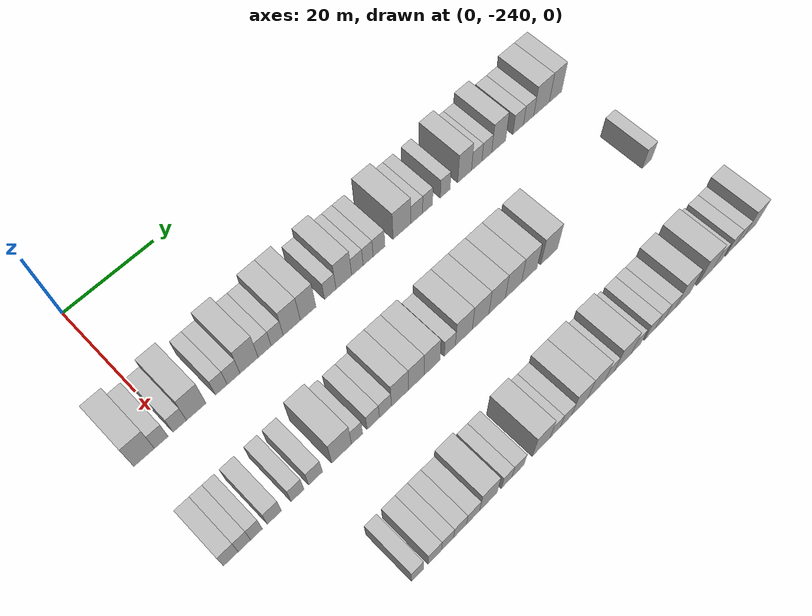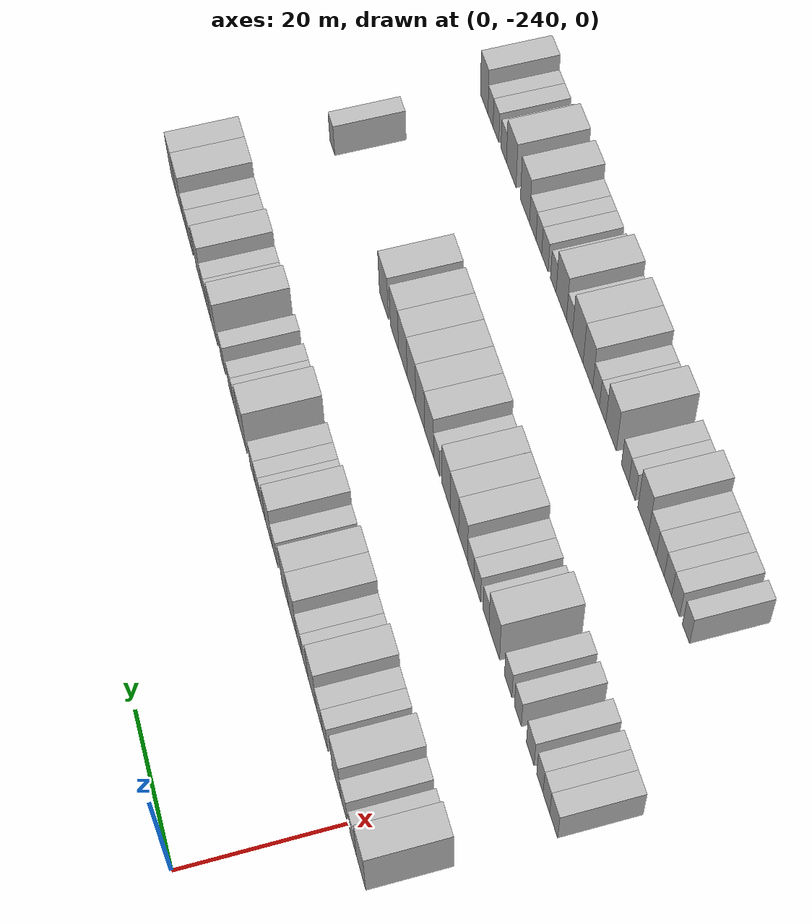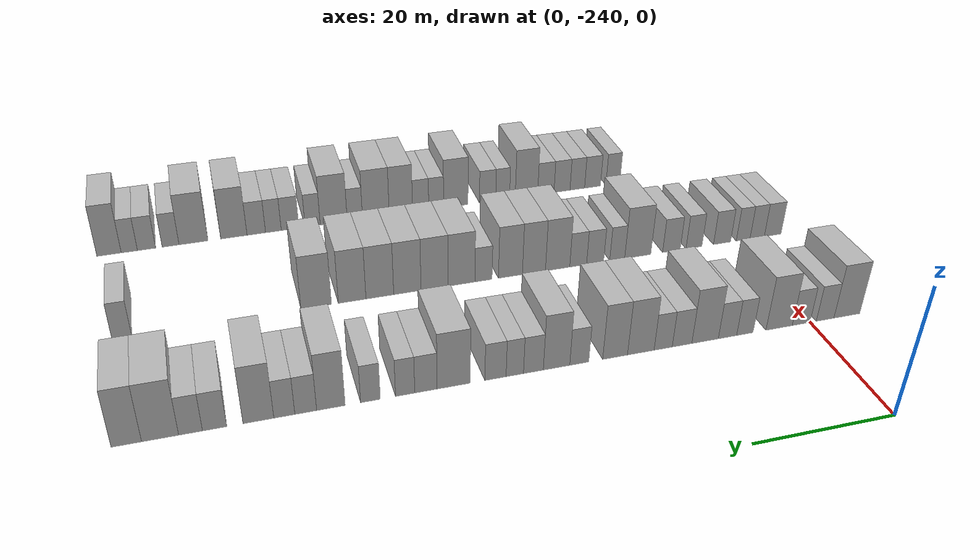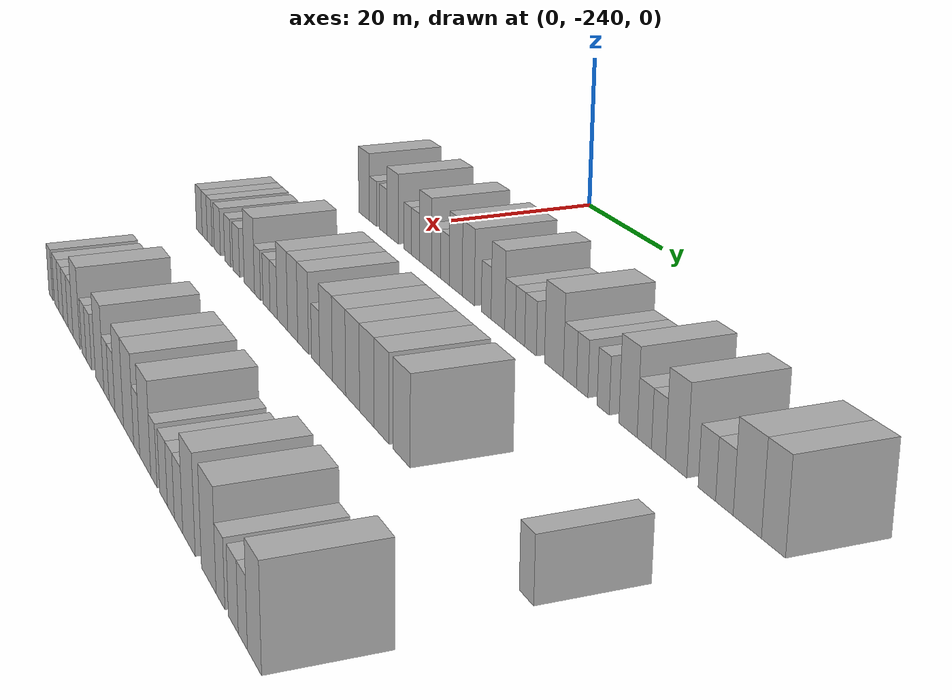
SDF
<sdf version="1.6">
 <world name="default">
  <model name="building_1">
   <static>1</static>
   <pose>25.0000 -245.9098 0 0.000000 0.000000 0.000000</pose>
   <link name="link">
    <pose>0 0 4.50 0 0 0</pose>
    <collision name="collision"><geometry><box><size>10.0000 4.1804 9.0000</size></box></geometry></collision>
    <visual name="visual">
     <cast_shadows>0</cast_shadows>
     <geometry><box><size>10.0000 4.1804 9.0000</size></box></geometry>
     <material>
      <script>
       <uri>model://HANNAS_wall/materials/scripts</uri>
       <uri>model://HANNAS_wall/materials/textures</uri>
       <name>vrc/HANNAS_wall</name>
      </script>
     </material>
    </visual>
   </link>
  </model>
  <model name="building_2">
   <static>1</static>
   <pose>25.0000 -242.4073 0 0.000000 0.000000 0.000000</pose>
   <link name="link">
    <pose>0 0 3.00 0 0 0</pose>
    <collision name="collision"><geometry><box><size>10.0000 2.8245 6.0000</size></box></geometry></collision>
    <visual name="visual">
     <cast_shadows>0</cast_shadows>
     <geometry><box><size>10.0000 2.8245 6.0000</size></box></geometry>
     <material>
      <script>
       <uri>model://HANNAS_wall/materials/scripts</uri>
       <uri>model://HANNAS_wall/materials/textures</uri>
       <name>vrc/HANNAS_wall</name>
      </script>
     </material>
    </visual>
   </link>
  </model>
  <model name="building_3">
   <static>1</static>
   <pose>25.0000 -238.5863 0 0.000000 0.000000 0.000000</pose>
   <link name="link">
    <pose>0 0 3.00 0 0 0</pose>
    <collision name="collision"><geometry><box><size>10.0000 2.8175 6.0000</size></box></geometry></collision>
    <visual name="visual">
     <cast_shadows>0</cast_shadows>
     <geometry><box><size>10.0000 2.8175 6.0000</size></box></geometry>
     <material>
      <script>
       <uri>model://HANNAS_wall/materials/scripts</uri>
       <uri>model://HANNAS_wall/materials/textures</uri>
       <name>vrc/HANNAS_wall</name>
      </script>
     </material>
    </visual>
   </link>
  </model>
  <model name="building_4">
   <static>1</static>
   <pose>25.0000 -235.1116 0 0.000000 0.000000 0.000000</pose>
   <link name="link">
    <pose>0 0 4.50 0 0 0</pose>
    <collision name="collision"><geometry><box><size>10.0000 4.1319 9.0000</size></box></geometry></collision>
    <visual name="visual">
     <cast_shadows>0</cast_shadows>
     <geometry><box><size>10.0000 4.1319 9.0000</size></box></geometry>
     <material>
      <script>
       <uri>model://HANNAS_wall/materials/scripts</uri>
       <uri>model://HANNAS_wall/materials/textures</uri>
       <name>vrc/HANNAS_wall</name>
      </script>
     </material>
    </visual>
   </link>
  </model>
  <model name="building_5">
   <static>1</static>
   <pose>25.0000 -229.7799 0 0.000000 0.000000 0.000000</pose>
   <link name="link">
    <pose>0 0 3.00 0 0 0</pose>
    <collision name="collision"><geometry><box><size>10.0000 2.5315 6.0000</size></box></geometry></collision>
    <visual name="visual">
     <cast_shadows>0</cast_shadows>
     <geometry><box><size>10.0000 2.5315 6.0000</size></box></geometry>
     <material>
      <script>
       <uri>model://HANNAS_wall/materials/scripts</uri>
       <uri>model://HANNAS_wall/materials/textures</uri>
       <name>vrc/HANNAS_wall</name>
      </script>
     </material>
    </visual>
   </link>
  </model>
  <model name="building_6">
   <static>1</static>
   <pose>25.0000 -227.1085 0 0.000000 0.000000 0.000000</pose>
   <link name="link">
    <pose>0 0 3.00 0 0 0</pose>
    <collision name="collision"><geometry><box><size>10.0000 2.8113 6.0000</size></box></geometry></collision>
    <visual name="visual">
     <cast_shadows>0</cast_shadows>
     <geometry><box><size>10.0000 2.8113 6.0000</size></box></geometry>
     <material>
      <script>
       <uri>model://HANNAS_wall/materials/scripts</uri>
       <uri>model://HANNAS_wall/materials/textures</uri>
       <name>vrc/HANNAS_wall</name>
      </script>
     </material>
    </visual>
   </link>
  </model>
  <model name="building_7">
   <static>1</static>
   <pose>25.0000 -223.6957 0 0.000000 0.000000 0.000000</pose>
   <link name="link">
    <pose>0 0 4.50 0 0 0</pose>
    <collision name="collision"><geometry><box><size>10.0000 4.0144 9.0000</size></box></geometry></collision>
    <visual name="visual">
     <cast_shadows>0</cast_shadows>
     <geometry><box><size>10.0000 4.0144 9.0000</size></box></geometry>
     <material>
      <script>
       <uri>model://HANNAS_wall/materials/scripts</uri>
       <uri>model://HANNAS_wall/materials/textures</uri>
       <name>vrc/HANNAS_wall</name>
      </script>
     </material>
    </visual>
   </link>
  </model>
  <model name="building_8">
   <static>1</static>
   <pose>25.0000 -220.2198 0 0.000000 0.000000 0.000000</pose>
   <link name="link">
    <pose>0 0 3.00 0 0 0</pose>
    <collision name="collision"><geometry><box><size>10.0000 2.9374 6.0000</size></box></geometry></collision>
    <visual name="visual">
     <cast_shadows>0</cast_shadows>
     <geometry><box><size>10.0000 2.9374 6.0000</size></box></geometry>
     <material>
      <script>
       <uri>model://HANNAS_wall/materials/scripts</uri>
       <uri>model://HANNAS_wall/materials/textures</uri>
       <name>vrc/HANNAS_wall</name>
      </script>
     </material>
    </visual>
   </link>
  </model>
  <model name="building_9">
   <static>1</static>
   <pose>25.0000 -217.4008 0 0.000000 0.000000 0.000000</pose>
   <link name="link">
    <pose>0 0 3.00 0 0 0</pose>
    <collision name="collision"><geometry><box><size>10.0000 2.7006 6.0000</size></box></geometry></collision>
    <visual name="visual">
     <cast_shadows>0</cast_shadows>
     <geometry><box><size>10.0000 2.7006 6.0000</size></box></geometry>
     <material>
      <script>
       <uri>model://HANNAS_wall/materials/scripts</uri>
       <uri>model://HANNAS_wall/materials/textures</uri>
       <name>vrc/HANNAS_wall</name>
      </script>
     </material>
    </visual>
   </link>
  </model>
  <model name="building_10">
   <static>1</static>
   <pose>25.0000 -214.0906 0 0.000000 0.000000 0.000000</pose>
   <link name="link">
    <pose>0 0 4.50 0 0 0</pose>
    <collision name="collision"><geometry><box><size>10.0000 3.9199 9.0000</size></box></geometry></collision>
    <visual name="visual">
     <cast_shadows>0</cast_shadows>
     <geometry><box><size>10.0000 3.9199 9.0000</size></box></geometry>
     <material>
      <script>
       <uri>model://HANNAS_wall/materials/scripts</uri>
       <uri>model://HANNAS_wall/materials/textures</uri>
       <name>vrc/HANNAS_wall</name>
      </script>
     </material>
    </visual>
   </link>
  </model>
  <model name="building_11">
   <static>1</static>
   <pose>25.0000 -210.3249 0 0.000000 0.000000 0.000000</pose>
   <link name="link">
    <pose>0 0 4.50 0 0 0</pose>
    <collision name="collision"><geometry><box><size>10.0000 3.6115 9.0000</size></box></geometry></collision>
    <visual name="visual">
     <cast_shadows>0</cast_shadows>
     <geometry><box><size>10.0000 3.6115 9.0000</size></box></geometry>
     <material>
      <script>
       <uri>model://HANNAS_wall/materials/scripts</uri>
       <uri>model://HANNAS_wall/materials/textures</uri>
       <name>vrc/HANNAS_wall</name>
      </script>
     </material>
    </visual>
   </link>
  </model>
  <model name="building_12">
   <static>1</static>
   <pose>25.0000 -205.1551 0 0.000000 0.000000 0.000000</pose>
   <link name="link">
    <pose>0 0 3.00 0 0 0</pose>
    <collision name="collision"><geometry><box><size>10.0000 2.7282 6.0000</size></box></geometry></collision>
    <visual name="visual">
     <cast_shadows>0</cast_shadows>
     <geometry><box><size>10.0000 2.7282 6.0000</size></box></geometry>
     <material>
      <script>
       <uri>model://HANNAS_wall/materials/scripts</uri>
       <uri>model://HANNAS_wall/materials/textures</uri>
       <name>vrc/HANNAS_wall</name>
      </script>
     </material>
    </visual>
   </link>
  </model>
  <model name="building_13">
   <static>1</static>
   <pose>25.0000 -201.9180 0 0.000000 0.000000 0.000000</pose>
   <link name="link">
    <pose>0 0 4.50 0 0 0</pose>
    <collision name="collision"><geometry><box><size>10.0000 3.7458 9.0000</size></box></geometry></collision>
    <visual name="visual">
     <cast_shadows>0</cast_shadows>
     <geometry><box><size>10.0000 3.7458 9.0000</size></box></geometry>
     <material>
      <script>
       <uri>model://HANNAS_wall/materials/scripts</uri>
       <uri>model://HANNAS_wall/materials/textures</uri>
       <name>vrc/HANNAS_wall</name>
      </script>
     </material>
    </visual>
   </link>
  </model>
  <model name="building_14">
   <static>1</static>
   <pose>25.0000 -198.6531 0 0.000000 0.000000 0.000000</pose>
   <link name="link">
    <pose>0 0 3.00 0 0 0</pose>
    <collision name="collision"><geometry><box><size>10.0000 2.7839 6.0000</size></box></geometry></collision>
    <visual name="visual">
     <cast_shadows>0</cast_shadows>
     <geometry><box><size>10.0000 2.7839 6.0000</size></box></geometry>
     <material>
      <script>
       <uri>model://HANNAS_wall/materials/scripts</uri>
       <uri>model://HANNAS_wall/materials/textures</uri>
       <name>vrc/HANNAS_wall</name>
      </script>
     </material>
    </visual>
   </link>
  </model>
  <model name="building_15">
   <static>1</static>
   <pose>25.0000 -196.0487 0 0.000000 0.000000 0.000000</pose>
   <link name="link">
    <pose>0 0 3.00 0 0 0</pose>
    <collision name="collision"><geometry><box><size>10.0000 2.4248 6.0000</size></box></geometry></collision>
    <visual name="visual">
     <cast_shadows>0</cast_shadows>
     <geometry><box><size>10.0000 2.4248 6.0000</size></box></geometry>
     <material>
      <script>
       <uri>model://HANNAS_wall/materials/scripts</uri>
       <uri>model://HANNAS_wall/materials/textures</uri>
       <name>vrc/HANNAS_wall</name>
      </script>
     </material>
    </visual>
   </link>
  </model>
  <model name="building_16">
   <static>1</static>
   <pose>25.0000 -193.3712 0 0.000000 0.000000 0.000000</pose>
   <link name="link">
    <pose>0 0 3.00 0 0 0</pose>
    <collision name="collision"><geometry><box><size>10.0000 2.9303 6.0000</size></box></geometry></collision>
    <visual name="visual">
     <cast_shadows>0</cast_shadows>
     <geometry><box><size>10.0000 2.9303 6.0000</size></box></geometry>
     <material>
      <script>
       <uri>model://HANNAS_wall/materials/scripts</uri>
       <uri>model://HANNAS_wall/materials/textures</uri>
       <name>vrc/HANNAS_wall</name>
      </script>
     </material>
    </visual>
   </link>
  </model>
  <model name="building_17">
   <static>1</static>
   <pose>25.0000 -187.6627 0 0.000000 0.000000 0.000000</pose>
   <link name="link">
    <pose>0 0 4.50 0 0 0</pose>
    <collision name="collision"><geometry><box><size>10.0000 4.4866 9.0000</size></box></geometry></collision>
    <visual name="visual">
     <cast_shadows>0</cast_shadows>
     <geometry><box><size>10.0000 4.4866 9.0000</size></box></geometry>
     <material>
      <script>
       <uri>model://HANNAS_wall/materials/scripts</uri>
       <uri>model://HANNAS_wall/materials/textures</uri>
       <name>vrc/HANNAS_wall</name>
      </script>
     </material>
    </visual>
   </link>
  </model>
  <model name="building_18">
   <static>1</static>
   <pose>25.0000 -183.9223 0 0.000000 0.000000 0.000000</pose>
   <link name="link">
    <pose>0 0 3.00 0 0 0</pose>
    <collision name="collision"><geometry><box><size>10.0000 2.9942 6.0000</size></box></geometry></collision>
    <visual name="visual">
     <cast_shadows>0</cast_shadows>
     <geometry><box><size>10.0000 2.9942 6.0000</size></box></geometry>
     <material>
      <script>
       <uri>model://HANNAS_wall/materials/scripts</uri>
       <uri>model://HANNAS_wall/materials/textures</uri>
       <name>vrc/HANNAS_wall</name>
      </script>
     </material>
    </visual>
   </link>
  </model>
  <model name="building_19">
   <static>1</static>
   <pose>25.0000 -181.1492 0 0.000000 0.000000 0.000000</pose>
   <link name="link">
    <pose>0 0 3.00 0 0 0</pose>
    <collision name="collision"><geometry><box><size>10.0000 2.5520 6.0000</size></box></geometry></collision>
    <visual name="visual">
     <cast_shadows>0</cast_shadows>
     <geometry><box><size>10.0000 2.5520 6.0000</size></box></geometry>
     <material>
      <script>
       <uri>model://HANNAS_wall/materials/scripts</uri>
       <uri>model://HANNAS_wall/materials/textures</uri>
       <name>vrc/HANNAS_wall</name>
      </script>
     </material>
    </visual>
   </link>
  </model>
  <model name="building_20">
   <static>1</static>
   <pose>25.0000 -176.5829 0 0.000000 0.000000 0.000000</pose>
   <link name="link">
    <pose>0 0 3.00 0 0 0</pose>
    <collision name="collision"><geometry><box><size>10.0000 2.5806 6.0000</size></box></geometry></collision>
    <visual name="visual">
     <cast_shadows>0</cast_shadows>
     <geometry><box><size>10.0000 2.5806 6.0000</size></box></geometry>
     <material>
      <script>
       <uri>model://HANNAS_wall/materials/scripts</uri>
       <uri>model://HANNAS_wall/materials/textures</uri>
       <name>vrc/HANNAS_wall</name>
      </script>
     </material>
    </visual>
   </link>
  </model>
  <model name="building_21">
   <static>1</static>
   <pose>25.0000 -171.4576 0 0.000000 0.000000 0.000000</pose>
   <link name="link">
    <pose>0 0 4.50 0 0 0</pose>
    <collision name="collision"><geometry><box><size>10.0000 3.6699 9.0000</size></box></geometry></collision>
    <visual name="visual">
     <cast_shadows>0</cast_shadows>
     <geometry><box><size>10.0000 3.6699 9.0000</size></box></geometry>
     <material>
      <script>
       <uri>model://HANNAS_wall/materials/scripts</uri>
       <uri>model://HANNAS_wall/materials/textures</uri>
       <name>vrc/HANNAS_wall</name>
      </script>
     </material>
    </visual>
   </link>
  </model>
  <model name="building_22">
   <static>1</static>
   <pose>25.0000 -168.2360 0 0.000000 0.000000 0.000000</pose>
   <link name="link">
    <pose>0 0 3.00 0 0 0</pose>
    <collision name="collision"><geometry><box><size>10.0000 2.7734 6.0000</size></box></geometry></collision>
    <visual name="visual">
     <cast_shadows>0</cast_shadows>
     <geometry><box><size>10.0000 2.7734 6.0000</size></box></geometry>
     <material>
      <script>
       <uri>model://HANNAS_wall/materials/scripts</uri>
       <uri>model://HANNAS_wall/materials/textures</uri>
       <name>vrc/HANNAS_wall</name>
      </script>
     </material>
    </visual>
   </link>
  </model>
  <model name="building_23">
   <static>1</static>
   <pose>25.0000 -165.5248 0 0.000000 0.000000 0.000000</pose>
   <link name="link">
    <pose>0 0 3.00 0 0 0</pose>
    <collision name="collision"><geometry><box><size>10.0000 2.6490 6.0000</size></box></geometry></collision>
    <visual name="visual">
     <cast_shadows>0</cast_shadows>
     <geometry><box><size>10.0000 2.6490 6.0000</size></box></geometry>
     <material>
      <script>
       <uri>model://HANNAS_wall/materials/scripts</uri>
       <uri>model://HANNAS_wall/materials/textures</uri>
       <name>vrc/HANNAS_wall</name>
      </script>
     </material>
    </visual>
   </link>
  </model>
  <model name="building_24">
   <static>1</static>
   <pose>25.0000 -162.2749 0 0.000000 0.000000 0.000000</pose>
   <link name="link">
    <pose>0 0 4.50 0 0 0</pose>
    <collision name="collision"><geometry><box><size>10.0000 3.8509 9.0000</size></box></geometry></collision>
    <visual name="visual">
     <cast_shadows>0</cast_shadows>
     <geometry><box><size>10.0000 3.8509 9.0000</size></box></geometry>
     <material>
      <script>
       <uri>model://HANNAS_wall/materials/scripts</uri>
       <uri>model://HANNAS_wall/materials/textures</uri>
       <name>vrc/HANNAS_wall</name>
      </script>
     </material>
    </visual>
   </link>
  </model>
  <model name="building_25">
   <static>1</static>
   <pose>25.0000 -156.8620 0 0.000000 0.000000 0.000000</pose>
   <link name="link">
    <pose>0 0 3.00 0 0 0</pose>
    <collision name="collision"><geometry><box><size>10.0000 2.9749 6.0000</size></box></geometry></collision>
    <visual name="visual">
     <cast_shadows>0</cast_shadows>
     <geometry><box><size>10.0000 2.9749 6.0000</size></box></geometry>
     <material>
      <script>
       <uri>model://HANNAS_wall/materials/scripts</uri>
       <uri>model://HANNAS_wall/materials/textures</uri>
       <name>vrc/HANNAS_wall</name>
      </script>
     </material>
    </visual>
   </link>
  </model>
  <model name="building_26">
   <static>1</static>
   <pose>25.0000 -153.9282 0 0.000000 0.000000 0.000000</pose>
   <link name="link">
    <pose>0 0 3.00 0 0 0</pose>
    <collision name="collision"><geometry><box><size>10.0000 2.8927 6.0000</size></box></geometry></collision>
    <visual name="visual">
     <cast_shadows>0</cast_shadows>
     <geometry><box><size>10.0000 2.8927 6.0000</size></box></geometry>
     <material>
      <script>
       <uri>model://HANNAS_wall/materials/scripts</uri>
       <uri>model://HANNAS_wall/materials/textures</uri>
       <name>vrc/HANNAS_wall</name>
      </script>
     </material>
    </visual>
   </link>
  </model>
  <model name="building_27">
   <static>1</static>
   <pose>25.0000 -150.2612 0 0.000000 0.000000 0.000000</pose>
   <link name="link">
    <pose>0 0 4.50 0 0 0</pose>
    <collision name="collision"><geometry><box><size>10.0000 4.4414 9.0000</size></box></geometry></collision>
    <visual name="visual">
     <cast_shadows>0</cast_shadows>
     <geometry><box><size>10.0000 4.4414 9.0000</size></box></geometry>
     <material>
      <script>
       <uri>model://HANNAS_wall/materials/scripts</uri>
       <uri>model://HANNAS_wall/materials/textures</uri>
       <name>vrc/HANNAS_wall</name>
      </script>
     </material>
    </visual>
   </link>
  </model>
  <model name="building_28">
   <static>1</static>
   <pose>25.0000 -146.2379 0 0.000000 0.000000 0.000000</pose>
   <link name="link">
    <pose>0 0 4.50 0 0 0</pose>
    <collision name="collision"><geometry><box><size>10.0000 3.6051 9.0000</size></box></geometry></collision>
    <visual name="visual">
     <cast_shadows>0</cast_shadows>
     <geometry><box><size>10.0000 3.6051 9.0000</size></box></geometry>
     <material>
      <script>
       <uri>model://HANNAS_wall/materials/scripts</uri>
       <uri>model://HANNAS_wall/materials/textures</uri>
       <name>vrc/HANNAS_wall</name>
      </script>
     </material>
    </visual>
   </link>
  </model>
  <model name="building_125">
   <static>1</static>
   <pose>47.0000 -246.5119 0 0.000000 0.000000 0.000000</pose>
   <link name="link">
    <pose>0 0 3.00 0 0 0</pose>
    <collision name="collision"><geometry><box><size>10.0000 2.9762 6.0000</size></box></geometry></collision>
    <visual name="visual">
     <cast_shadows>0</cast_shadows>
     <geometry><box><size>10.0000 2.9762 6.0000</size></box></geometry>
     <material>
      <script>
       <uri>model://HANNAS_wall/materials/scripts</uri>
       <uri>model://HANNAS_wall/materials/textures</uri>
       <name>vrc/HANNAS_wall</name>
      </script>
     </material>
    </visual>
   </link>
  </model>
  <model name="building_126">
   <static>1</static>
   <pose>47.0000 -243.7589 0 0.000000 0.000000 0.000000</pose>
   <link name="link">
    <pose>0 0 3.00 0 0 0</pose>
    <collision name="collision"><geometry><box><size>10.0000 2.5297 6.0000</size></box></geometry></collision>
    <visual name="visual">
     <cast_shadows>0</cast_shadows>
     <geometry><box><size>10.0000 2.5297 6.0000</size></box></geometry>
     <material>
      <script>
       <uri>model://HANNAS_wall/materials/scripts</uri>
       <uri>model://HANNAS_wall/materials/textures</uri>
       <name>vrc/HANNAS_wall</name>
      </script>
     </material>
    </visual>
   </link>
  </model>
  <model name="building_127">
   <static>1</static>
   <pose>47.0000 -241.2882 0 0.000000 0.000000 0.000000</pose>
   <link name="link">
    <pose>0 0 3.00 0 0 0</pose>
    <collision name="collision"><geometry><box><size>10.0000 2.4119 6.0000</size></box></geometry></collision>
    <visual name="visual">
     <cast_shadows>0</cast_shadows>
     <geometry><box><size>10.0000 2.4119 6.0000</size></box></geometry>
     <material>
      <script>
       <uri>model://HANNAS_wall/materials/scripts</uri>
       <uri>model://HANNAS_wall/materials/textures</uri>
       <name>vrc/HANNAS_wall</name>
      </script>
     </material>
    </visual>
   </link>
  </model>
  <model name="building_128">
   <static>1</static>
   <pose>47.0000 -237.5965 0 0.000000 0.000000 0.000000</pose>
   <link name="link">
    <pose>0 0 3.00 0 0 0</pose>
    <collision name="collision"><geometry><box><size>10.0000 2.9713 6.0000</size></box></geometry></collision>
    <visual name="visual">
     <cast_shadows>0</cast_shadows>
     <geometry><box><size>10.0000 2.9713 6.0000</size></box></geometry>
     <material>
      <script>
       <uri>model://HANNAS_wall/materials/scripts</uri>
       <uri>model://HANNAS_wall/materials/textures</uri>
       <name>vrc/HANNAS_wall</name>
      </script>
     </material>
    </visual>
   </link>
  </model>
  <model name="building_129">
   <static>1</static>
   <pose>47.0000 -232.7412 0 0.000000 0.000000 0.000000</pose>
   <link name="link">
    <pose>0 0 3.00 0 0 0</pose>
    <collision name="collision"><geometry><box><size>10.0000 2.7392 6.0000</size></box></geometry></collision>
    <visual name="visual">
     <cast_shadows>0</cast_shadows>
     <geometry><box><size>10.0000 2.7392 6.0000</size></box></geometry>
     <material>
      <script>
       <uri>model://HANNAS_wall/materials/scripts</uri>
       <uri>model://HANNAS_wall/materials/textures</uri>
       <name>vrc/HANNAS_wall</name>
      </script>
     </material>
    </visual>
   </link>
  </model>
  <model name="building_130">
   <static>1</static>
   <pose>47.0000 -228.8809 0 0.000000 0.000000 0.000000</pose>
   <link name="link">
    <pose>0 0 3.00 0 0 0</pose>
    <collision name="collision"><geometry><box><size>10.0000 2.9815 6.0000</size></box></geometry></collision>
    <visual name="visual">
     <cast_shadows>0</cast_shadows>
     <geometry><box><size>10.0000 2.9815 6.0000</size></box></geometry>
     <material>
      <script>
       <uri>model://HANNAS_wall/materials/scripts</uri>
       <uri>model://HANNAS_wall/materials/textures</uri>
       <name>vrc/HANNAS_wall</name>
      </script>
     </material>
    </visual>
   </link>
  </model>
  <model name="building_131">
   <static>1</static>
   <pose>47.0000 -223.2064 0 0.000000 0.000000 0.000000</pose>
   <link name="link">
    <pose>0 0 4.50 0 0 0</pose>
    <collision name="collision"><geometry><box><size>10.0000 4.3675 9.0000</size></box></geometry></collision>
    <visual name="visual">
     <cast_shadows>0</cast_shadows>
     <geometry><box><size>10.0000 4.3675 9.0000</size></box></geometry>
     <material>
      <script>
       <uri>model://HANNAS_wall/materials/scripts</uri>
       <uri>model://HANNAS_wall/materials/textures</uri>
       <name>vrc/HANNAS_wall</name>
      </script>
     </material>
    </visual>
   </link>
  </model>
  <model name="building_132">
   <static>1</static>
   <pose>47.0000 -219.7772 0 0.000000 0.000000 0.000000</pose>
   <link name="link">
    <pose>0 0 3.00 0 0 0</pose>
    <collision name="collision"><geometry><box><size>10.0000 2.4910 6.0000</size></box></geometry></collision>
    <visual name="visual">
     <cast_shadows>0</cast_shadows>
     <geometry><box><size>10.0000 2.4910 6.0000</size></box></geometry>
     <material>
      <script>
       <uri>model://HANNAS_wall/materials/scripts</uri>
       <uri>model://HANNAS_wall/materials/textures</uri>
       <name>vrc/HANNAS_wall</name>
      </script>
     </material>
    </visual>
   </link>
  </model>
  <model name="building_133">
   <static>1</static>
   <pose>47.0000 -216.1342 0 0.000000 0.000000 0.000000</pose>
   <link name="link">
    <pose>0 0 3.00 0 0 0</pose>
    <collision name="collision"><geometry><box><size>10.0000 2.7949 6.0000</size></box></geometry></collision>
    <visual name="visual">
     <cast_shadows>0</cast_shadows>
     <geometry><box><size>10.0000 2.7949 6.0000</size></box></geometry>
     <material>
      <script>
       <uri>model://HANNAS_wall/materials/scripts</uri>
       <uri>model://HANNAS_wall/materials/textures</uri>
       <name>vrc/HANNAS_wall</name>
      </script>
     </material>
    </visual>
   </link>
  </model>
  <model name="building_134">
   <static>1</static>
   <pose>47.0000 -213.3626 0 0.000000 0.000000 0.000000</pose>
   <link name="link">
    <pose>0 0 3.00 0 0 0</pose>
    <collision name="collision"><geometry><box><size>10.0000 2.7484 6.0000</size></box></geometry></collision>
    <visual name="visual">
     <cast_shadows>0</cast_shadows>
     <geometry><box><size>10.0000 2.7484 6.0000</size></box></geometry>
     <material>
      <script>
       <uri>model://HANNAS_wall/materials/scripts</uri>
       <uri>model://HANNAS_wall/materials/textures</uri>
       <name>vrc/HANNAS_wall</name>
      </script>
     </material>
    </visual>
   </link>
  </model>
  <model name="building_135">
   <static>1</static>
   <pose>47.0000 -210.0232 0 0.000000 0.000000 0.000000</pose>
   <link name="link">
    <pose>0 0 4.50 0 0 0</pose>
    <collision name="collision"><geometry><box><size>10.0000 3.9304 9.0000</size></box></geometry></collision>
    <visual name="visual">
     <cast_shadows>0</cast_shadows>
     <geometry><box><size>10.0000 3.9304 9.0000</size></box></geometry>
     <material>
      <script>
       <uri>model://HANNAS_wall/materials/scripts</uri>
       <uri>model://HANNAS_wall/materials/textures</uri>
       <name>vrc/HANNAS_wall</name>
      </script>
     </material>
    </visual>
   </link>
  </model>
  <model name="building_136">
   <static>1</static>
   <pose>47.0000 -206.2139 0 0.000000 0.000000 0.000000</pose>
   <link name="link">
    <pose>0 0 4.50 0 0 0</pose>
    <collision name="collision"><geometry><box><size>10.0000 3.6883 9.0000</size></box></geometry></collision>
    <visual name="visual">
     <cast_shadows>0</cast_shadows>
     <geometry><box><size>10.0000 3.6883 9.0000</size></box></geometry>
     <material>
      <script>
       <uri>model://HANNAS_wall/materials/scripts</uri>
       <uri>model://HANNAS_wall/materials/textures</uri>
       <name>vrc/HANNAS_wall</name>
      </script>
     </material>
    </visual>
   </link>
  </model>
  <model name="building_137">
   <static>1</static>
   <pose>47.0000 -202.4729 0 0.000000 0.000000 0.000000</pose>
   <link name="link">
    <pose>0 0 4.50 0 0 0</pose>
    <collision name="collision"><geometry><box><size>10.0000 3.7936 9.0000</size></box></geometry></collision>
    <visual name="visual">
     <cast_shadows>0</cast_shadows>
     <geometry><box><size>10.0000 3.7936 9.0000</size></box></geometry>
     <material>
      <script>
       <uri>model://HANNAS_wall/materials/scripts</uri>
       <uri>model://HANNAS_wall/materials/textures</uri>
       <name>vrc/HANNAS_wall</name>
      </script>
     </material>
    </visual>
   </link>
  </model>
  <model name="building_138">
   <static>1</static>
   <pose>47.0000 -198.2376 0 0.000000 0.000000 0.000000</pose>
   <link name="link">
    <pose>0 0 3.00 0 0 0</pose>
    <collision name="collision"><geometry><box><size>10.0000 2.6770 6.0000</size></box></geometry></collision>
    <visual name="visual">
     <cast_shadows>0</cast_shadows>
     <geometry><box><size>10.0000 2.6770 6.0000</size></box></geometry>
     <material>
      <script>
       <uri>model://HANNAS_wall/materials/scripts</uri>
       <uri>model://HANNAS_wall/materials/textures</uri>
       <name>vrc/HANNAS_wall</name>
      </script>
     </material>
    </visual>
   </link>
  </model>
  <model name="building_139">
   <static>1</static>
   <pose>47.0000 -194.8142 0 0.000000 0.000000 0.000000</pose>
   <link name="link">
    <pose>0 0 4.50 0 0 0</pose>
    <collision name="collision"><geometry><box><size>10.0000 4.1697 9.0000</size></box></geometry></collision>
    <visual name="visual">
     <cast_shadows>0</cast_shadows>
     <geometry><box><size>10.0000 4.1697 9.0000</size></box></geometry>
     <material>
      <script>
       <uri>model://HANNAS_wall/materials/scripts</uri>
       <uri>model://HANNAS_wall/materials/textures</uri>
       <name>vrc/HANNAS_wall</name>
      </script>
     </material>
    </visual>
   </link>
  </model>
  <model name="building_140">
   <static>1</static>
   <pose>47.0000 -190.6640 0 0.000000 0.000000 0.000000</pose>
   <link name="link">
    <pose>0 0 4.50 0 0 0</pose>
    <collision name="collision"><geometry><box><size>10.0000 4.1308 9.0000</size></box></geometry></collision>
    <visual name="visual">
     <cast_shadows>0</cast_shadows>
     <geometry><box><size>10.0000 4.1308 9.0000</size></box></geometry>
     <material>
      <script>
       <uri>model://HANNAS_wall/materials/scripts</uri>
       <uri>model://HANNAS_wall/materials/textures</uri>
       <name>vrc/HANNAS_wall</name>
      </script>
     </material>
    </visual>
   </link>
  </model>
  <model name="building_141">
   <static>1</static>
   <pose>47.0000 -186.5309 0 0.000000 0.000000 0.000000</pose>
   <link name="link">
    <pose>0 0 4.50 0 0 0</pose>
    <collision name="collision"><geometry><box><size>10.0000 4.1354 9.0000</size></box></geometry></collision>
    <visual name="visual">
     <cast_shadows>0</cast_shadows>
     <geometry><box><size>10.0000 4.1354 9.0000</size></box></geometry>
     <material>
      <script>
       <uri>model://HANNAS_wall/materials/scripts</uri>
       <uri>model://HANNAS_wall/materials/textures</uri>
       <name>vrc/HANNAS_wall</name>
      </script>
     </material>
    </visual>
   </link>
  </model>
  <model name="building_142">
   <static>1</static>
   <pose>47.0000 -182.3873 0 0.000000 0.000000 0.000000</pose>
   <link name="link">
    <pose>0 0 4.50 0 0 0</pose>
    <collision name="collision"><geometry><box><size>10.0000 4.1519 9.0000</size></box></geometry></collision>
    <visual name="visual">
     <cast_shadows>0</cast_shadows>
     <geometry><box><size>10.0000 4.1519 9.0000</size></box></geometry>
     <material>
      <script>
       <uri>model://HANNAS_wall/materials/scripts</uri>
       <uri>model://HANNAS_wall/materials/textures</uri>
       <name>vrc/HANNAS_wall</name>
      </script>
     </material>
    </visual>
   </link>
  </model>
  <model name="building_143">
   <static>1</static>
   <pose>47.0000 -178.2716 0 0.000000 0.000000 0.000000</pose>
   <link name="link">
    <pose>0 0 4.50 0 0 0</pose>
    <collision name="collision"><geometry><box><size>10.0000 4.0795 9.0000</size></box></geometry></collision>
    <visual name="visual">
     <cast_shadows>0</cast_shadows>
     <geometry><box><size>10.0000 4.0795 9.0000</size></box></geometry>
     <material>
      <script>
       <uri>model://HANNAS_wall/materials/scripts</uri>
       <uri>model://HANNAS_wall/materials/textures</uri>
       <name>vrc/HANNAS_wall</name>
      </script>
     </material>
    </visual>
   </link>
  </model>
  <model name="building_144">
   <static>1</static>
   <pose>47.0000 -173.0052 0 0.000000 0.000000 0.000000</pose>
   <link name="link">
    <pose>0 0 4.50 0 0 0</pose>
    <collision name="collision"><geometry><box><size>10.0000 4.4532 9.0000</size></box></geometry></collision>
    <visual name="visual">
     <cast_shadows>0</cast_shadows>
     <geometry><box><size>10.0000 4.4532 9.0000</size></box></geometry>
     <material>
      <script>
       <uri>model://HANNAS_wall/materials/scripts</uri>
       <uri>model://HANNAS_wall/materials/textures</uri>
       <name>vrc/HANNAS_wall</name>
      </script>
     </material>
    </visual>
   </link>
  </model>
  <model name="building_145">
   <static>1</static>
   <pose>47.0000 -145.7853 0 0.000000 0.000000 0.000000</pose>
   <link name="link">
    <pose>0 0 3.00 0 0 0</pose>
    <collision name="collision"><geometry><box><size>10.0000 2.6623 6.0000</size></box></geometry></collision>
    <visual name="visual">
     <cast_shadows>0</cast_shadows>
     <geometry><box><size>10.0000 2.6623 6.0000</size></box></geometry>
     <material>
      <script>
       <uri>model://HANNAS_wall/materials/scripts</uri>
       <uri>model://HANNAS_wall/materials/textures</uri>
       <name>vrc/HANNAS_wall</name>
      </script>
     </material>
    </visual>
   </link>
  </model>
  <model name="building_249">
   <static>1</static>
   <pose>69.0000 -228.1109 0 0.000000 0.000000 0.000000</pose>
   <link name="link">
    <pose>0 0 3.00 0 0 0</pose>
    <collision name="collision"><geometry><box><size>10.0000 2.5928 6.0000</size></box></geometry></collision>
    <visual name="visual">
     <cast_shadows>0</cast_shadows>
     <geometry><box><size>10.0000 2.5928 6.0000</size></box></geometry>
     <material>
      <script>
       <uri>model://HANNAS_wall/materials/scripts</uri>
       <uri>model://HANNAS_wall/materials/textures</uri>
       <name>vrc/HANNAS_wall</name>
      </script>
     </material>
    </visual>
   </link>
  </model>
  <model name="building_250">
   <static>1</static>
   <pose>69.0000 -224.3570 0 0.000000 0.000000 0.000000</pose>
   <link name="link">
    <pose>0 0 3.00 0 0 0</pose>
    <collision name="collision"><geometry><box><size>10.0000 2.9150 6.0000</size></box></geometry></collision>
    <visual name="visual">
     <cast_shadows>0</cast_shadows>
     <geometry><box><size>10.0000 2.9150 6.0000</size></box></geometry>
     <material>
      <script>
       <uri>model://HANNAS_wall/materials/scripts</uri>
       <uri>model://HANNAS_wall/materials/textures</uri>
       <name>vrc/HANNAS_wall</name>
      </script>
     </material>
    </visual>
   </link>
  </model>
  <model name="building_251">
   <static>1</static>
   <pose>69.0000 -221.5616 0 0.000000 0.000000 0.000000</pose>
   <link name="link">
    <pose>0 0 3.00 0 0 0</pose>
    <collision name="collision"><geometry><box><size>10.0000 2.6759 6.0000</size></box></geometry></collision>
    <visual name="visual">
     <cast_shadows>0</cast_shadows>
     <geometry><box><size>10.0000 2.6759 6.0000</size></box></geometry>
     <material>
      <script>
       <uri>model://HANNAS_wall/materials/scripts</uri>
       <uri>model://HANNAS_wall/materials/textures</uri>
       <name>vrc/HANNAS_wall</name>
      </script>
     </material>
    </visual>
   </link>
  </model>
  <model name="building_252">
   <static>1</static>
   <pose>69.0000 -218.7708 0 0.000000 0.000000 0.000000</pose>
   <link name="link">
    <pose>0 0 3.00 0 0 0</pose>
    <collision name="collision"><geometry><box><size>10.0000 2.9057 6.0000</size></box></geometry></collision>
    <visual name="visual">
     <cast_shadows>0</cast_shadows>
     <geometry><box><size>10.0000 2.9057 6.0000</size></box></geometry>
     <material>
      <script>
       <uri>model://HANNAS_wall/materials/scripts</uri>
       <uri>model://HANNAS_wall/materials/textures</uri>
       <name>vrc/HANNAS_wall</name>
      </script>
     </material>
    </visual>
   </link>
  </model>
  <model name="building_253">
   <static>1</static>
   <pose>69.0000 -215.8401 0 0.000000 0.000000 0.000000</pose>
   <link name="link">
    <pose>0 0 3.00 0 0 0</pose>
    <collision name="collision"><geometry><box><size>10.0000 2.9558 6.0000</size></box></geometry></collision>
    <visual name="visual">
     <cast_shadows>0</cast_shadows>
     <geometry><box><size>10.0000 2.9558 6.0000</size></box></geometry>
     <material>
      <script>
       <uri>model://HANNAS_wall/materials/scripts</uri>
       <uri>model://HANNAS_wall/materials/textures</uri>
       <name>vrc/HANNAS_wall</name>
      </script>
     </material>
    </visual>
   </link>
  </model>
  <model name="building_254">
   <static>1</static>
   <pose>69.0000 -212.3555 0 0.000000 0.000000 0.000000</pose>
   <link name="link">
    <pose>0 0 4.50 0 0 0</pose>
    <collision name="collision"><geometry><box><size>10.0000 4.0133 9.0000</size></box></geometry></collision>
    <visual name="visual">
     <cast_shadows>0</cast_shadows>
     <geometry><box><size>10.0000 4.0133 9.0000</size></box></geometry>
     <material>
      <script>
       <uri>model://HANNAS_wall/materials/scripts</uri>
       <uri>model://HANNAS_wall/materials/textures</uri>
       <name>vrc/HANNAS_wall</name>
      </script>
     </material>
    </visual>
   </link>
  </model>
  <model name="building_255">
   <static>1</static>
   <pose>69.0000 -208.1225 0 0.000000 0.000000 0.000000</pose>
   <link name="link">
    <pose>0 0 3.00 0 0 0</pose>
    <collision name="collision"><geometry><box><size>10.0000 2.4528 6.0000</size></box></geometry></collision>
    <visual name="visual">
     <cast_shadows>0</cast_shadows>
     <geometry><box><size>10.0000 2.4528 6.0000</size></box></geometry>
     <material>
      <script>
       <uri>model://HANNAS_wall/materials/scripts</uri>
       <uri>model://HANNAS_wall/materials/textures</uri>
       <name>vrc/HANNAS_wall</name>
      </script>
     </material>
    </visual>
   </link>
  </model>
  <model name="building_256">
   <static>1</static>
   <pose>69.0000 -205.4654 0 0.000000 0.000000 0.000000</pose>
   <link name="link">
    <pose>0 0 3.00 0 0 0</pose>
    <collision name="collision"><geometry><box><size>10.0000 2.8612 6.0000</size></box></geometry></collision>
    <visual name="visual">
     <cast_shadows>0</cast_shadows>
     <geometry><box><size>10.0000 2.8612 6.0000</size></box></geometry>
     <material>
      <script>
       <uri>model://HANNAS_wall/materials/scripts</uri>
       <uri>model://HANNAS_wall/materials/textures</uri>
       <name>vrc/HANNAS_wall</name>
      </script>
     </material>
    </visual>
   </link>
  </model>
  <model name="building_257">
   <static>1</static>
   <pose>69.0000 -199.9177 0 0.000000 0.000000 0.000000</pose>
   <link name="link">
    <pose>0 0 4.50 0 0 0</pose>
    <collision name="collision"><geometry><box><size>10.0000 4.2342 9.0000</size></box></geometry></collision>
    <visual name="visual">
     <cast_shadows>0</cast_shadows>
     <geometry><box><size>10.0000 4.2342 9.0000</size></box></geometry>
     <material>
      <script>
       <uri>model://HANNAS_wall/materials/scripts</uri>
       <uri>model://HANNAS_wall/materials/textures</uri>
       <name>vrc/HANNAS_wall</name>
      </script>
     </material>
    </visual>
   </link>
  </model>
  <model name="building_258">
   <static>1</static>
   <pose>69.0000 -196.5294 0 0.000000 0.000000 0.000000</pose>
   <link name="link">
    <pose>0 0 3.00 0 0 0</pose>
    <collision name="collision"><geometry><box><size>10.0000 2.5424 6.0000</size></box></geometry></collision>
    <visual name="visual">
     <cast_shadows>0</cast_shadows>
     <geometry><box><size>10.0000 2.5424 6.0000</size></box></geometry>
     <material>
      <script>
       <uri>model://HANNAS_wall/materials/scripts</uri>
       <uri>model://HANNAS_wall/materials/textures</uri>
       <name>vrc/HANNAS_wall</name>
      </script>
     </material>
    </visual>
   </link>
  </model>
  <model name="building_259">
   <static>1</static>
   <pose>69.0000 -193.8778 0 0.000000 0.000000 0.000000</pose>
   <link name="link">
    <pose>0 0 3.00 0 0 0</pose>
    <collision name="collision"><geometry><box><size>10.0000 2.7608 6.0000</size></box></geometry></collision>
    <visual name="visual">
     <cast_shadows>0</cast_shadows>
     <geometry><box><size>10.0000 2.7608 6.0000</size></box></geometry>
     <material>
      <script>
       <uri>model://HANNAS_wall/materials/scripts</uri>
       <uri>model://HANNAS_wall/materials/textures</uri>
       <name>vrc/HANNAS_wall</name>
      </script>
     </material>
    </visual>
   </link>
  </model>
  <model name="building_260">
   <static>1</static>
   <pose>69.0000 -190.5201 0 0.000000 0.000000 0.000000</pose>
   <link name="link">
    <pose>0 0 4.50 0 0 0</pose>
    <collision name="collision"><geometry><box><size>10.0000 3.9546 9.0000</size></box></geometry></collision>
    <visual name="visual">
     <cast_shadows>0</cast_shadows>
     <geometry><box><size>10.0000 3.9546 9.0000</size></box></geometry>
     <material>
      <script>
       <uri>model://HANNAS_wall/materials/scripts</uri>
       <uri>model://HANNAS_wall/materials/textures</uri>
       <name>vrc/HANNAS_wall</name>
      </script>
     </material>
    </visual>
   </link>
  </model>
  <model name="building_261">
   <static>1</static>
   <pose>69.0000 -186.3049 0 0.000000 0.000000 0.000000</pose>
   <link name="link">
    <pose>0 0 4.50 0 0 0</pose>
    <collision name="collision"><geometry><box><size>10.0000 4.4758 9.0000</size></box></geometry></collision>
    <visual name="visual">
     <cast_shadows>0</cast_shadows>
     <geometry><box><size>10.0000 4.4758 9.0000</size></box></geometry>
     <material>
      <script>
       <uri>model://HANNAS_wall/materials/scripts</uri>
       <uri>model://HANNAS_wall/materials/textures</uri>
       <name>vrc/HANNAS_wall</name>
      </script>
     </material>
    </visual>
   </link>
  </model>
  <model name="building_262">
   <static>1</static>
   <pose>69.0000 -182.7962 0 0.000000 0.000000 0.000000</pose>
   <link name="link">
    <pose>0 0 3.00 0 0 0</pose>
    <collision name="collision"><geometry><box><size>10.0000 2.5417 6.0000</size></box></geometry></collision>
    <visual name="visual">
     <cast_shadows>0</cast_shadows>
     <geometry><box><size>10.0000 2.5417 6.0000</size></box></geometry>
     <material>
      <script>
       <uri>model://HANNAS_wall/materials/scripts</uri>
       <uri>model://HANNAS_wall/materials/textures</uri>
       <name>vrc/HANNAS_wall</name>
      </script>
     </material>
    </visual>
   </link>
  </model>
  <model name="building_263">
   <static>1</static>
   <pose>69.0000 -179.3043 0 0.000000 0.000000 0.000000</pose>
   <link name="link">
    <pose>0 0 4.50 0 0 0</pose>
    <collision name="collision"><geometry><box><size>10.0000 4.4422 9.0000</size></box></geometry></collision>
    <visual name="visual">
     <cast_shadows>0</cast_shadows>
     <geometry><box><size>10.0000 4.4422 9.0000</size></box></geometry>
     <material>
      <script>
       <uri>model://HANNAS_wall/materials/scripts</uri>
       <uri>model://HANNAS_wall/materials/textures</uri>
       <name>vrc/HANNAS_wall</name>
      </script>
     </material>
    </visual>
   </link>
  </model>
  <model name="building_264">
   <static>1</static>
   <pose>69.0000 -175.8497 0 0.000000 0.000000 0.000000</pose>
   <link name="link">
    <pose>0 0 3.00 0 0 0</pose>
    <collision name="collision"><geometry><box><size>10.0000 2.4671 6.0000</size></box></geometry></collision>
    <visual name="visual">
     <cast_shadows>0</cast_shadows>
     <geometry><box><size>10.0000 2.4671 6.0000</size></box></geometry>
     <material>
      <script>
       <uri>model://HANNAS_wall/materials/scripts</uri>
       <uri>model://HANNAS_wall/materials/textures</uri>
       <name>vrc/HANNAS_wall</name>
      </script>
     </material>
    </visual>
   </link>
  </model>
  <model name="building_265">
   <static>1</static>
   <pose>69.0000 -172.1849 0 0.000000 0.000000 0.000000</pose>
   <link name="link">
    <pose>0 0 3.00 0 0 0</pose>
    <collision name="collision"><geometry><box><size>10.0000 2.8624 6.0000</size></box></geometry></collision>
    <visual name="visual">
     <cast_shadows>0</cast_shadows>
     <geometry><box><size>10.0000 2.8624 6.0000</size></box></geometry>
     <material>
      <script>
       <uri>model://HANNAS_wall/materials/scripts</uri>
       <uri>model://HANNAS_wall/materials/textures</uri>
       <name>vrc/HANNAS_wall</name>
      </script>
     </material>
    </visual>
   </link>
  </model>
  <model name="building_266">
   <static>1</static>
   <pose>69.0000 -169.4945 0 0.000000 0.000000 0.000000</pose>
   <link name="link">
    <pose>0 0 3.00 0 0 0</pose>
    <collision name="collision"><geometry><box><size>10.0000 2.5184 6.0000</size></box></geometry></collision>
    <visual name="visual">
     <cast_shadows>0</cast_shadows>
     <geometry><box><size>10.0000 2.5184 6.0000</size></box></geometry>
     <material>
      <script>
       <uri>model://HANNAS_wall/materials/scripts</uri>
       <uri>model://HANNAS_wall/materials/textures</uri>
       <name>vrc/HANNAS_wall</name>
      </script>
     </material>
    </visual>
   </link>
  </model>
  <model name="building_267">
   <static>1</static>
   <pose>69.0000 -166.7617 0 0.000000 0.000000 0.000000</pose>
   <link name="link">
    <pose>0 0 3.00 0 0 0</pose>
    <collision name="collision"><geometry><box><size>10.0000 2.9473 6.0000</size></box></geometry></collision>
    <visual name="visual">
     <cast_shadows>0</cast_shadows>
     <geometry><box><size>10.0000 2.9473 6.0000</size></box></geometry>
     <material>
      <script>
       <uri>model://HANNAS_wall/materials/scripts</uri>
       <uri>model://HANNAS_wall/materials/textures</uri>
       <name>vrc/HANNAS_wall</name>
      </script>
     </material>
    </visual>
   </link>
  </model>
  <model name="building_268">
   <static>1</static>
   <pose>69.0000 -163.2099 0 0.000000 0.000000 0.000000</pose>
   <link name="link">
    <pose>0 0 4.50 0 0 0</pose>
    <collision name="collision"><geometry><box><size>10.0000 4.1563 9.0000</size></box></geometry></collision>
    <visual name="visual">
     <cast_shadows>0</cast_shadows>
     <geometry><box><size>10.0000 4.1563 9.0000</size></box></geometry>
     <material>
      <script>
       <uri>model://HANNAS_wall/materials/scripts</uri>
       <uri>model://HANNAS_wall/materials/textures</uri>
       <name>vrc/HANNAS_wall</name>
      </script>
     </material>
    </visual>
   </link>
  </model>
  <model name="building_269">
   <static>1</static>
   <pose>69.0000 -156.8820 0 0.000000 0.000000 0.000000</pose>
   <link name="link">
    <pose>0 0 4.50 0 0 0</pose>
    <collision name="collision"><geometry><box><size>10.0000 4.4995 9.0000</size></box></geometry></collision>
    <visual name="visual">
     <cast_shadows>0</cast_shadows>
     <geometry><box><size>10.0000 4.4995 9.0000</size></box></geometry>
     <material>
      <script>
       <uri>model://HANNAS_wall/materials/scripts</uri>
       <uri>model://HANNAS_wall/materials/textures</uri>
       <name>vrc/HANNAS_wall</name>
      </script>
     </material>
    </visual>
   </link>
  </model>
  <model name="building_270">
   <static>1</static>
   <pose>69.0000 -153.3369 0 0.000000 0.000000 0.000000</pose>
   <link name="link">
    <pose>0 0 3.00 0 0 0</pose>
    <collision name="collision"><geometry><box><size>10.0000 2.5906 6.0000</size></box></geometry></collision>
    <visual name="visual">
     <cast_shadows>0</cast_shadows>
     <geometry><box><size>10.0000 2.5906 6.0000</size></box></geometry>
     <material>
      <script>
       <uri>model://HANNAS_wall/materials/scripts</uri>
       <uri>model://HANNAS_wall/materials/textures</uri>
       <name>vrc/HANNAS_wall</name>
      </script>
     </material>
    </visual>
   </link>
  </model>
  <model name="building_271">
   <static>1</static>
   <pose>69.0000 -149.6540 0 0.000000 0.000000 0.000000</pose>
   <link name="link">
    <pose>0 0 3.00 0 0 0</pose>
    <collision name="collision"><geometry><box><size>10.0000 2.7752 6.0000</size></box></geometry></collision>
    <visual name="visual">
     <cast_shadows>0</cast_shadows>
     <geometry><box><size>10.0000 2.7752 6.0000</size></box></geometry>
     <material>
      <script>
       <uri>model://HANNAS_wall/materials/scripts</uri>
       <uri>model://HANNAS_wall/materials/textures</uri>
       <name>vrc/HANNAS_wall</name>
      </script>
     </material>
    </visual>
   </link>
  </model>
  <model name="building_272">
   <static>1</static>
   <pose>69.0000 -147.0400 0 0.000000 0.000000 0.000000</pose>
   <link name="link">
    <pose>0 0 3.00 0 0 0</pose>
    <collision name="collision"><geometry><box><size>10.0000 2.4530 6.0000</size></box></geometry></collision>
    <visual name="visual">
     <cast_shadows>0</cast_shadows>
     <geometry><box><size>10.0000 2.4530 6.0000</size></box></geometry>
     <material>
      <script>
       <uri>model://HANNAS_wall/materials/scripts</uri>
       <uri>model://HANNAS_wall/materials/textures</uri>
       <name>vrc/HANNAS_wall</name>
      </script>
     </material>
    </visual>
   </link>
  </model>
  <model name="building_273">
   <static>1</static>
   <pose>69.0000 -143.9868 0 0.000000 0.000000 0.000000</pose>
   <link name="link">
    <pose>0 0 4.50 0 0 0</pose>
    <collision name="collision"><geometry><box><size>10.0000 3.6532 9.0000</size></box></geometry></collision>
    <visual name="visual">
     <cast_shadows>0</cast_shadows>
     <geometry><box><size>10.0000 3.6532 9.0000</size></box></geometry>
     <material>
      <script>
       <uri>model://HANNAS_wall/materials/scripts</uri>
       <uri>model://HANNAS_wall/materials/textures</uri>
       <name>vrc/HANNAS_wall</name>
      </script>
     </material>
    </visual>
   </link>
  </model>
 </world>
</sdf>
